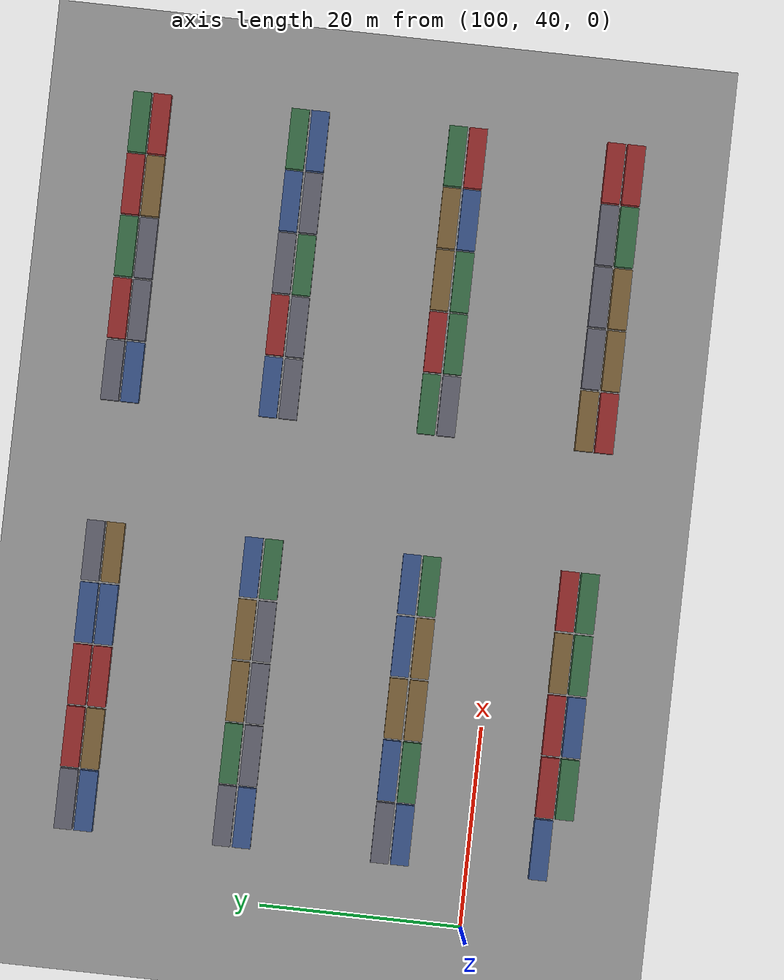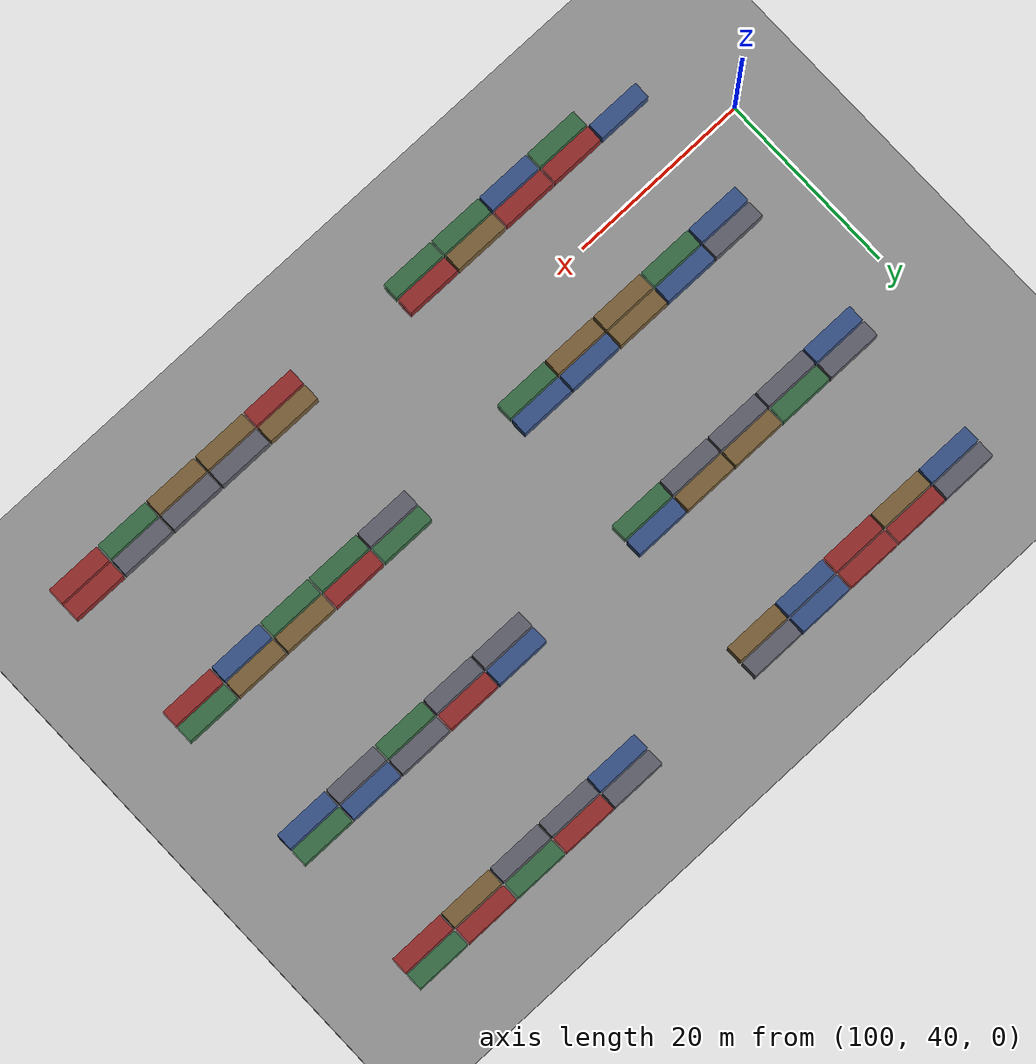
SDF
<sdf version="1.8">
 <world name="port">
  <model name="water">
   <static>true</static>
   <pose>250 250 -0.3 0 0 0</pose>
   <link name="link">
    <visual name="visual">
     <geometry><plane><normal>0 0 1</normal><size>2000 2000</size></plane></geometry>
     <material>
      <ambient>0.05 0.15 0.25 1</ambient>
      <diffuse>0.10 0.25 0.40 1</diffuse>
      <specular>0.20 0.30 0.45 1</specular>
     </material>
    </visual>
   </link>
  </model>
  <model name="port_surface">
   <static>true</static>
   <pose>250.0 250.0 -0.5 0 0 0</pose>
   <link name="link">
    <collision name="collision">
     <geometry><box><size>500.0 500.0 1.0</size></box></geometry>
     <surface><friction><ode><mu>1.0</mu><mu2>1.0</mu2></ode></friction></surface>
    </collision>
    <visual name="visual">
     <geometry><box><size>500.0 500.0 1.0</size></box></geometry>
     <material><ambient>0.45 0.45 0.45 1</ambient><diffuse>0.55 0.55 0.55 1</diffuse></material>
    </visual>
   </link>
  </model>
  <model name="container_02_00_0_1">
   <pose>108.600 32.900 1.050 0 0 0</pose>
   <link name="link">
    <inertial>
     <mass>2300.0</mass>
     <inertia><ixx>1387.67</ixx><ixy>0</ixy><ixz>0</ixz><iyy>7666.67</iyy><iyz>0</iyz><izz>7521.0</izz></inertia>
    </inertial>
    <collision name="collision"><geometry><box><size>6.0 1.8 2.0</size></box></geometry></collision>
    <visual name="visual">
     <geometry><box><size>6.0 1.8 2.0</size></box></geometry>
     <material><ambient>0.2 0.3 0.5 1</ambient><diffuse>0.2 0.3 0.5 1</diffuse></material>
    </visual>
   </link>
  </model>
  <model name="container_02_00_1_0">
   <pose>114.800 30.900 1.050 0 0 0</pose>
   <link name="link">
    <inertial>
     <mass>2300.0</mass>
     <inertia><ixx>1387.67</ixx><ixy>0</ixy><ixz>0</ixz><iyy>7666.67</iyy><iyz>0</iyz><izz>7521.0</izz></inertia>
    </inertial>
    <collision name="collision"><geometry><box><size>6.0 1.8 2.0</size></box></geometry></collision>
    <visual name="visual">
     <geometry><box><size>6.0 1.8 2.0</size></box></geometry>
     <material><ambient>0.2 0.4 0.25 1</ambient><diffuse>0.2 0.4 0.25 1</diffuse></material>
    </visual>
   </link>
  </model>
  <model name="container_02_00_1_1">
   <pose>114.800 32.900 1.050 0 0 0</pose>
   <link name="link">
    <inertial>
     <mass>2300.0</mass>
     <inertia><ixx>1387.67</ixx><ixy>0</ixy><ixz>0</ixz><iyy>7666.67</iyy><iyz>0</iyz><izz>7521.0</izz></inertia>
    </inertial>
    <collision name="collision"><geometry><box><size>6.0 1.8 2.0</size></box></geometry></collision>
    <visual name="visual">
     <geometry><box><size>6.0 1.8 2.0</size></box></geometry>
     <material><ambient>0.55 0.15 0.15 1</ambient><diffuse>0.55 0.15 0.15 1</diffuse></material>
    </visual>
   </link>
  </model>
  <model name="container_02_00_2_0">
   <pose>121.000 30.900 1.050 0 0 0</pose>
   <link name="link">
    <inertial>
     <mass>2300.0</mass>
     <inertia><ixx>1387.67</ixx><ixy>0</ixy><ixz>0</ixz><iyy>7666.67</iyy><iyz>0</iyz><izz>7521.0</izz></inertia>
    </inertial>
    <collision name="collision"><geometry><box><size>6.0 1.8 2.0</size></box></geometry></collision>
    <visual name="visual">
     <geometry><box><size>6.0 1.8 2.0</size></box></geometry>
     <material><ambient>0.2 0.3 0.5 1</ambient><diffuse>0.2 0.3 0.5 1</diffuse></material>
    </visual>
   </link>
  </model>
  <model name="container_02_00_2_1">
   <pose>121.000 32.900 1.050 0 0 0</pose>
   <link name="link">
    <inertial>
     <mass>2300.0</mass>
     <inertia><ixx>1387.67</ixx><ixy>0</ixy><ixz>0</ixz><iyy>7666.67</iyy><iyz>0</iyz><izz>7521.0</izz></inertia>
    </inertial>
    <collision name="collision"><geometry><box><size>6.0 1.8 2.0</size></box></geometry></collision>
    <visual name="visual">
     <geometry><box><size>6.0 1.8 2.0</size></box></geometry>
     <material><ambient>0.55 0.15 0.15 1</ambient><diffuse>0.55 0.15 0.15 1</diffuse></material>
    </visual>
   </link>
  </model>
  <model name="container_02_00_3_0">
   <pose>127.200 30.900 1.050 0 0 0</pose>
   <link name="link">
    <inertial>
     <mass>2300.0</mass>
     <inertia><ixx>1387.67</ixx><ixy>0</ixy><ixz>0</ixz><iyy>7666.67</iyy><iyz>0</iyz><izz>7521.0</izz></inertia>
    </inertial>
    <collision name="collision"><geometry><box><size>6.0 1.8 2.0</size></box></geometry></collision>
    <visual name="visual">
     <geometry><box><size>6.0 1.8 2.0</size></box></geometry>
     <material><ambient>0.2 0.4 0.25 1</ambient><diffuse>0.2 0.4 0.25 1</diffuse></material>
    </visual>
   </link>
  </model>
  <model name="container_02_00_3_1">
   <pose>127.200 32.900 1.050 0 0 0</pose>
   <link name="link">
    <inertial>
     <mass>2300.0</mass>
     <inertia><ixx>1387.67</ixx><ixy>0</ixy><ixz>0</ixz><iyy>7666.67</iyy><iyz>0</iyz><izz>7521.0</izz></inertia>
    </inertial>
    <collision name="collision"><geometry><box><size>6.0 1.8 2.0</size></box></geometry></collision>
    <visual name="visual">
     <geometry><box><size>6.0 1.8 2.0</size></box></geometry>
     <material><ambient>0.45 0.35 0.2 1</ambient><diffuse>0.45 0.35 0.2 1</diffuse></material>
    </visual>
   </link>
  </model>
  <model name="container_02_00_4_0">
   <pose>133.400 30.900 1.050 0 0 0</pose>
   <link name="link">
    <inertial>
     <mass>2300.0</mass>
     <inertia><ixx>1387.67</ixx><ixy>0</ixy><ixz>0</ixz><iyy>7666.67</iyy><iyz>0</iyz><izz>7521.0</izz></inertia>
    </inertial>
    <collision name="collision"><geometry><box><size>6.0 1.8 2.0</size></box></geometry></collision>
    <visual name="visual">
     <geometry><box><size>6.0 1.8 2.0</size></box></geometry>
     <material><ambient>0.2 0.4 0.25 1</ambient><diffuse>0.2 0.4 0.25 1</diffuse></material>
    </visual>
   </link>
  </model>
  <model name="container_02_00_4_1">
   <pose>133.400 32.900 1.050 0 0 0</pose>
   <link name="link">
    <inertial>
     <mass>2300.0</mass>
     <inertia><ixx>1387.67</ixx><ixy>0</ixy><ixz>0</ixz><iyy>7666.67</iyy><iyz>0</iyz><izz>7521.0</izz></inertia>
    </inertial>
    <collision name="collision"><geometry><box><size>6.0 1.8 2.0</size></box></geometry></collision>
    <visual name="visual">
     <geometry><box><size>6.0 1.8 2.0</size></box></geometry>
     <material><ambient>0.55 0.15 0.15 1</ambient><diffuse>0.55 0.15 0.15 1</diffuse></material>
    </visual>
   </link>
  </model>
  <model name="container_02_01_0_0">
   <pose>108.600 46.700 1.050 0 0 0</pose>
   <link name="link">
    <inertial>
     <mass>2300.0</mass>
     <inertia><ixx>1387.67</ixx><ixy>0</ixy><ixz>0</ixz><iyy>7666.67</iyy><iyz>0</iyz><izz>7521.0</izz></inertia>
    </inertial>
    <collision name="collision"><geometry><box><size>6.0 1.8 2.0</size></box></geometry></collision>
    <visual name="visual">
     <geometry><box><size>6.0 1.8 2.0</size></box></geometry>
     <material><ambient>0.2 0.3 0.5 1</ambient><diffuse>0.2 0.3 0.5 1</diffuse></material>
    </visual>
   </link>
  </model>
  <model name="container_02_01_0_1">
   <pose>108.600 48.700 1.050 0 0 0</pose>
   <link name="link">
    <inertial>
     <mass>2300.0</mass>
     <inertia><ixx>1387.67</ixx><ixy>0</ixy><ixz>0</ixz><iyy>7666.67</iyy><iyz>0</iyz><izz>7521.0</izz></inertia>
    </inertial>
    <collision name="collision"><geometry><box><size>6.0 1.8 2.0</size></box></geometry></collision>
    <visual name="visual">
     <geometry><box><size>6.0 1.8 2.0</size></box></geometry>
     <material><ambient>0.35 0.35 0.4 1</ambient><diffuse>0.35 0.35 0.4 1</diffuse></material>
    </visual>
   </link>
  </model>
  <model name="container_02_01_1_0">
   <pose>114.800 46.700 1.050 0 0 0</pose>
   <link name="link">
    <inertial>
     <mass>2300.0</mass>
     <inertia><ixx>1387.67</ixx><ixy>0</ixy><ixz>0</ixz><iyy>7666.67</iyy><iyz>0</iyz><izz>7521.0</izz></inertia>
    </inertial>
    <collision name="collision"><geometry><box><size>6.0 1.8 2.0</size></box></geometry></collision>
    <visual name="visual">
     <geometry><box><size>6.0 1.8 2.0</size></box></geometry>
     <material><ambient>0.2 0.4 0.25 1</ambient><diffuse>0.2 0.4 0.25 1</diffuse></material>
    </visual>
   </link>
  </model>
  <model name="container_02_01_1_1">
   <pose>114.800 48.700 1.050 0 0 0</pose>
   <link name="link">
    <inertial>
     <mass>2300.0</mass>
     <inertia><ixx>1387.67</ixx><ixy>0</ixy><ixz>0</ixz><iyy>7666.67</iyy><iyz>0</iyz><izz>7521.0</izz></inertia>
    </inertial>
    <collision name="collision"><geometry><box><size>6.0 1.8 2.0</size></box></geometry></collision>
    <visual name="visual">
     <geometry><box><size>6.0 1.8 2.0</size></box></geometry>
     <material><ambient>0.2 0.3 0.5 1</ambient><diffuse>0.2 0.3 0.5 1</diffuse></material>
    </visual>
   </link>
  </model>
  <model name="container_02_01_2_0">
   <pose>121.000 46.700 1.050 0 0 0</pose>
   <link name="link">
    <inertial>
     <mass>2300.0</mass>
     <inertia><ixx>1387.67</ixx><ixy>0</ixy><ixz>0</ixz><iyy>7666.67</iyy><iyz>0</iyz><izz>7521.0</izz></inertia>
    </inertial>
    <collision name="collision"><geometry><box><size>6.0 1.8 2.0</size></box></geometry></collision>
    <visual name="visual">
     <geometry><box><size>6.0 1.8 2.0</size></box></geometry>
     <material><ambient>0.45 0.35 0.2 1</ambient><diffuse>0.45 0.35 0.2 1</diffuse></material>
    </visual>
   </link>
  </model>
  <model name="container_02_01_2_1">
   <pose>121.000 48.700 1.050 0 0 0</pose>
   <link name="link">
    <inertial>
     <mass>2300.0</mass>
     <inertia><ixx>1387.67</ixx><ixy>0</ixy><ixz>0</ixz><iyy>7666.67</iyy><iyz>0</iyz><izz>7521.0</izz></inertia>
    </inertial>
    <collision name="collision"><geometry><box><size>6.0 1.8 2.0</size></box></geometry></collision>
    <visual name="visual">
     <geometry><box><size>6.0 1.8 2.0</size></box></geometry>
     <material><ambient>0.45 0.35 0.2 1</ambient><diffuse>0.45 0.35 0.2 1</diffuse></material>
    </visual>
   </link>
  </model>
  <model name="container_02_01_3_0">
   <pose>127.200 46.700 1.050 0 0 0</pose>
   <link name="link">
    <inertial>
     <mass>2300.0</mass>
     <inertia><ixx>1387.67</ixx><ixy>0</ixy><ixz>0</ixz><iyy>7666.67</iyy><iyz>0</iyz><izz>7521.0</izz></inertia>
    </inertial>
    <collision name="collision"><geometry><box><size>6.0 1.8 2.0</size></box></geometry></collision>
    <visual name="visual">
     <geometry><box><size>6.0 1.8 2.0</size></box></geometry>
     <material><ambient>0.45 0.35 0.2 1</ambient><diffuse>0.45 0.35 0.2 1</diffuse></material>
    </visual>
   </link>
  </model>
  <model name="container_02_01_3_1">
   <pose>127.200 48.700 1.050 0 0 0</pose>
   <link name="link">
    <inertial>
     <mass>2300.0</mass>
     <inertia><ixx>1387.67</ixx><ixy>0</ixy><ixz>0</ixz><iyy>7666.67</iyy><iyz>0</iyz><izz>7521.0</izz></inertia>
    </inertial>
    <collision name="collision"><geometry><box><size>6.0 1.8 2.0</size></box></geometry></collision>
    <visual name="visual">
     <geometry><box><size>6.0 1.8 2.0</size></box></geometry>
     <material><ambient>0.2 0.3 0.5 1</ambient><diffuse>0.2 0.3 0.5 1</diffuse></material>
    </visual>
   </link>
  </model>
  <model name="container_02_01_4_0">
   <pose>133.400 46.700 1.050 0 0 0</pose>
   <link name="link">
    <inertial>
     <mass>2300.0</mass>
     <inertia><ixx>1387.67</ixx><ixy>0</ixy><ixz>0</ixz><iyy>7666.67</iyy><iyz>0</iyz><izz>7521.0</izz></inertia>
    </inertial>
    <collision name="collision"><geometry><box><size>6.0 1.8 2.0</size></box></geometry></collision>
    <visual name="visual">
     <geometry><box><size>6.0 1.8 2.0</size></box></geometry>
     <material><ambient>0.2 0.4 0.25 1</ambient><diffuse>0.2 0.4 0.25 1</diffuse></material>
    </visual>
   </link>
  </model>
  <model name="container_02_01_4_1">
   <pose>133.400 48.700 1.050 0 0 0</pose>
   <link name="link">
    <inertial>
     <mass>2300.0</mass>
     <inertia><ixx>1387.67</ixx><ixy>0</ixy><ixz>0</ixz><iyy>7666.67</iyy><iyz>0</iyz><izz>7521.0</izz></inertia>
    </inertial>
    <collision name="collision"><geometry><box><size>6.0 1.8 2.0</size></box></geometry></collision>
    <visual name="visual">
     <geometry><box><size>6.0 1.8 2.0</size></box></geometry>
     <material><ambient>0.2 0.3 0.5 1</ambient><diffuse>0.2 0.3 0.5 1</diffuse></material>
    </visual>
   </link>
  </model>
  <model name="container_02_02_0_0">
   <pose>108.600 62.500 1.050 0 0 0</pose>
   <link name="link">
    <inertial>
     <mass>2300.0</mass>
     <inertia><ixx>1387.67</ixx><ixy>0</ixy><ixz>0</ixz><iyy>7666.67</iyy><iyz>0</iyz><izz>7521.0</izz></inertia>
    </inertial>
    <collision name="collision"><geometry><box><size>6.0 1.8 2.0</size></box></geometry></collision>
    <visual name="visual">
     <geometry><box><size>6.0 1.8 2.0</size></box></geometry>
     <material><ambient>0.2 0.3 0.5 1</ambient><diffuse>0.2 0.3 0.5 1</diffuse></material>
    </visual>
   </link>
  </model>
  <model name="container_02_02_0_1">
   <pose>108.600 64.500 1.050 0 0 0</pose>
   <link name="link">
    <inertial>
     <mass>2300.0</mass>
     <inertia><ixx>1387.67</ixx><ixy>0</ixy><ixz>0</ixz><iyy>7666.67</iyy><iyz>0</iyz><izz>7521.0</izz></inertia>
    </inertial>
    <collision name="collision"><geometry><box><size>6.0 1.8 2.0</size></box></geometry></collision>
    <visual name="visual">
     <geometry><box><size>6.0 1.8 2.0</size></box></geometry>
     <material><ambient>0.35 0.35 0.4 1</ambient><diffuse>0.35 0.35 0.4 1</diffuse></material>
    </visual>
   </link>
  </model>
  <model name="container_02_02_1_0">
   <pose>114.800 62.500 1.050 0 0 0</pose>
   <link name="link">
    <inertial>
     <mass>2300.0</mass>
     <inertia><ixx>1387.67</ixx><ixy>0</ixy><ixz>0</ixz><iyy>7666.67</iyy><iyz>0</iyz><izz>7521.0</izz></inertia>
    </inertial>
    <collision name="collision"><geometry><box><size>6.0 1.8 2.0</size></box></geometry></collision>
    <visual name="visual">
     <geometry><box><size>6.0 1.8 2.0</size></box></geometry>
     <material><ambient>0.35 0.35 0.4 1</ambient><diffuse>0.35 0.35 0.4 1</diffuse></material>
    </visual>
   </link>
  </model>
  <model name="container_02_02_1_1">
   <pose>114.800 64.500 1.050 0 0 0</pose>
   <link name="link">
    <inertial>
     <mass>2300.0</mass>
     <inertia><ixx>1387.67</ixx><ixy>0</ixy><ixz>0</ixz><iyy>7666.67</iyy><iyz>0</iyz><izz>7521.0</izz></inertia>
    </inertial>
    <collision name="collision"><geometry><box><size>6.0 1.8 2.0</size></box></geometry></collision>
    <visual name="visual">
     <geometry><box><size>6.0 1.8 2.0</size></box></geometry>
     <material><ambient>0.2 0.4 0.25 1</ambient><diffuse>0.2 0.4 0.25 1</diffuse></material>
    </visual>
   </link>
  </model>
  <model name="container_02_02_2_0">
   <pose>121.000 62.500 1.050 0 0 0</pose>
   <link name="link">
    <inertial>
     <mass>2300.0</mass>
     <inertia><ixx>1387.67</ixx><ixy>0</ixy><ixz>0</ixz><iyy>7666.67</iyy><iyz>0</iyz><izz>7521.0</izz></inertia>
    </inertial>
    <collision name="collision"><geometry><box><size>6.0 1.8 2.0</size></box></geometry></collision>
    <visual name="visual">
     <geometry><box><size>6.0 1.8 2.0</size></box></geometry>
     <material><ambient>0.35 0.35 0.4 1</ambient><diffuse>0.35 0.35 0.4 1</diffuse></material>
    </visual>
   </link>
  </model>
  <model name="container_02_02_2_1">
   <pose>121.000 64.500 1.050 0 0 0</pose>
   <link name="link">
    <inertial>
     <mass>2300.0</mass>
     <inertia><ixx>1387.67</ixx><ixy>0</ixy><ixz>0</ixz><iyy>7666.67</iyy><iyz>0</iyz><izz>7521.0</izz></inertia>
    </inertial>
    <collision name="collision"><geometry><box><size>6.0 1.8 2.0</size></box></geometry></collision>
    <visual name="visual">
     <geometry><box><size>6.0 1.8 2.0</size></box></geometry>
     <material><ambient>0.45 0.35 0.2 1</ambient><diffuse>0.45 0.35 0.2 1</diffuse></material>
    </visual>
   </link>
  </model>
  <model name="container_02_02_3_0">
   <pose>127.200 62.500 1.050 0 0 0</pose>
   <link name="link">
    <inertial>
     <mass>2300.0</mass>
     <inertia><ixx>1387.67</ixx><ixy>0</ixy><ixz>0</ixz><iyy>7666.67</iyy><iyz>0</iyz><izz>7521.0</izz></inertia>
    </inertial>
    <collision name="collision"><geometry><box><size>6.0 1.8 2.0</size></box></geometry></collision>
    <visual name="visual">
     <geometry><box><size>6.0 1.8 2.0</size></box></geometry>
     <material><ambient>0.35 0.35 0.4 1</ambient><diffuse>0.35 0.35 0.4 1</diffuse></material>
    </visual>
   </link>
  </model>
  <model name="container_02_02_3_1">
   <pose>127.200 64.500 1.050 0 0 0</pose>
   <link name="link">
    <inertial>
     <mass>2300.0</mass>
     <inertia><ixx>1387.67</ixx><ixy>0</ixy><ixz>0</ixz><iyy>7666.67</iyy><iyz>0</iyz><izz>7521.0</izz></inertia>
    </inertial>
    <collision name="collision"><geometry><box><size>6.0 1.8 2.0</size></box></geometry></collision>
    <visual name="visual">
     <geometry><box><size>6.0 1.8 2.0</size></box></geometry>
     <material><ambient>0.45 0.35 0.2 1</ambient><diffuse>0.45 0.35 0.2 1</diffuse></material>
    </visual>
   </link>
  </model>
  <model name="container_02_02_4_0">
   <pose>133.400 62.500 1.050 0 0 0</pose>
   <link name="link">
    <inertial>
     <mass>2300.0</mass>
     <inertia><ixx>1387.67</ixx><ixy>0</ixy><ixz>0</ixz><iyy>7666.67</iyy><iyz>0</iyz><izz>7521.0</izz></inertia>
    </inertial>
    <collision name="collision"><geometry><box><size>6.0 1.8 2.0</size></box></geometry></collision>
    <visual name="visual">
     <geometry><box><size>6.0 1.8 2.0</size></box></geometry>
     <material><ambient>0.2 0.4 0.25 1</ambient><diffuse>0.2 0.4 0.25 1</diffuse></material>
    </visual>
   </link>
  </model>
  <model name="container_02_02_4_1">
   <pose>133.400 64.500 1.050 0 0 0</pose>
   <link name="link">
    <inertial>
     <mass>2300.0</mass>
     <inertia><ixx>1387.67</ixx><ixy>0</ixy><ixz>0</ixz><iyy>7666.67</iyy><iyz>0</iyz><izz>7521.0</izz></inertia>
    </inertial>
    <collision name="collision"><geometry><box><size>6.0 1.8 2.0</size></box></geometry></collision>
    <visual name="visual">
     <geometry><box><size>6.0 1.8 2.0</size></box></geometry>
     <material><ambient>0.2 0.3 0.5 1</ambient><diffuse>0.2 0.3 0.5 1</diffuse></material>
    </visual>
   </link>
  </model>
  <model name="container_02_03_0_0">
   <pose>108.600 78.300 1.050 0 0 0</pose>
   <link name="link">
    <inertial>
     <mass>2300.0</mass>
     <inertia><ixx>1387.67</ixx><ixy>0</ixy><ixz>0</ixz><iyy>7666.67</iyy><iyz>0</iyz><izz>7521.0</izz></inertia>
    </inertial>
    <collision name="collision"><geometry><box><size>6.0 1.8 2.0</size></box></geometry></collision>
    <visual name="visual">
     <geometry><box><size>6.0 1.8 2.0</size></box></geometry>
     <material><ambient>0.2 0.3 0.5 1</ambient><diffuse>0.2 0.3 0.5 1</diffuse></material>
    </visual>
   </link>
  </model>
  <model name="container_02_03_0_1">
   <pose>108.600 80.300 1.050 0 0 0</pose>
   <link name="link">
    <inertial>
     <mass>2300.0</mass>
     <inertia><ixx>1387.67</ixx><ixy>0</ixy><ixz>0</ixz><iyy>7666.67</iyy><iyz>0</iyz><izz>7521.0</izz></inertia>
    </inertial>
    <collision name="collision"><geometry><box><size>6.0 1.8 2.0</size></box></geometry></collision>
    <visual name="visual">
     <geometry><box><size>6.0 1.8 2.0</size></box></geometry>
     <material><ambient>0.35 0.35 0.4 1</ambient><diffuse>0.35 0.35 0.4 1</diffuse></material>
    </visual>
   </link>
  </model>
  <model name="container_02_03_1_0">
   <pose>114.800 78.300 1.050 0 0 0</pose>
   <link name="link">
    <inertial>
     <mass>2300.0</mass>
     <inertia><ixx>1387.67</ixx><ixy>0</ixy><ixz>0</ixz><iyy>7666.67</iyy><iyz>0</iyz><izz>7521.0</izz></inertia>
    </inertial>
    <collision name="collision"><geometry><box><size>6.0 1.8 2.0</size></box></geometry></collision>
    <visual name="visual">
     <geometry><box><size>6.0 1.8 2.0</size></box></geometry>
     <material><ambient>0.45 0.35 0.2 1</ambient><diffuse>0.45 0.35 0.2 1</diffuse></material>
    </visual>
   </link>
  </model>
  <model name="container_02_03_1_1">
   <pose>114.800 80.300 1.050 0 0 0</pose>
   <link name="link">
    <inertial>
     <mass>2300.0</mass>
     <inertia><ixx>1387.67</ixx><ixy>0</ixy><ixz>0</ixz><iyy>7666.67</iyy><iyz>0</iyz><izz>7521.0</izz></inertia>
    </inertial>
    <collision name="collision"><geometry><box><size>6.0 1.8 2.0</size></box></geometry></collision>
    <visual name="visual">
     <geometry><box><size>6.0 1.8 2.0</size></box></geometry>
     <material><ambient>0.55 0.15 0.15 1</ambient><diffuse>0.55 0.15 0.15 1</diffuse></material>
    </visual>
   </link>
  </model>
  <model name="container_02_03_2_0">
   <pose>121.000 78.300 1.050 0 0 0</pose>
   <link name="link">
    <inertial>
     <mass>2300.0</mass>
     <inertia><ixx>1387.67</ixx><ixy>0</ixy><ixz>0</ixz><iyy>7666.67</iyy><iyz>0</iyz><izz>7521.0</izz></inertia>
    </inertial>
    <collision name="collision"><geometry><box><size>6.0 1.8 2.0</size></box></geometry></collision>
    <visual name="visual">
     <geometry><box><size>6.0 1.8 2.0</size></box></geometry>
     <material><ambient>0.55 0.15 0.15 1</ambient><diffuse>0.55 0.15 0.15 1</diffuse></material>
    </visual>
   </link>
  </model>
  <model name="container_02_03_2_1">
   <pose>121.000 80.300 1.050 0 0 0</pose>
   <link name="link">
    <inertial>
     <mass>2300.0</mass>
     <inertia><ixx>1387.67</ixx><ixy>0</ixy><ixz>0</ixz><iyy>7666.67</iyy><iyz>0</iyz><izz>7521.0</izz></inertia>
    </inertial>
    <collision name="collision"><geometry><box><size>6.0 1.8 2.0</size></box></geometry></collision>
    <visual name="visual">
     <geometry><box><size>6.0 1.8 2.0</size></box></geometry>
     <material><ambient>0.55 0.15 0.15 1</ambient><diffuse>0.55 0.15 0.15 1</diffuse></material>
    </visual>
   </link>
  </model>
  <model name="container_02_03_3_0">
   <pose>127.200 78.300 1.050 0 0 0</pose>
   <link name="link">
    <inertial>
     <mass>2300.0</mass>
     <inertia><ixx>1387.67</ixx><ixy>0</ixy><ixz>0</ixz><iyy>7666.67</iyy><iyz>0</iyz><izz>7521.0</izz></inertia>
    </inertial>
    <collision name="collision"><geometry><box><size>6.0 1.8 2.0</size></box></geometry></collision>
    <visual name="visual">
     <geometry><box><size>6.0 1.8 2.0</size></box></geometry>
     <material><ambient>0.2 0.3 0.5 1</ambient><diffuse>0.2 0.3 0.5 1</diffuse></material>
    </visual>
   </link>
  </model>
  <model name="container_02_03_3_1">
   <pose>127.200 80.300 1.050 0 0 0</pose>
   <link name="link">
    <inertial>
     <mass>2300.0</mass>
     <inertia><ixx>1387.67</ixx><ixy>0</ixy><ixz>0</ixz><iyy>7666.67</iyy><iyz>0</iyz><izz>7521.0</izz></inertia>
    </inertial>
    <collision name="collision"><geometry><box><size>6.0 1.8 2.0</size></box></geometry></collision>
    <visual name="visual">
     <geometry><box><size>6.0 1.8 2.0</size></box></geometry>
     <material><ambient>0.2 0.3 0.5 1</ambient><diffuse>0.2 0.3 0.5 1</diffuse></material>
    </visual>
   </link>
  </model>
  <model name="container_02_03_4_0">
   <pose>133.400 78.300 1.050 0 0 0</pose>
   <link name="link">
    <inertial>
     <mass>2300.0</mass>
     <inertia><ixx>1387.67</ixx><ixy>0</ixy><ixz>0</ixz><iyy>7666.67</iyy><iyz>0</iyz><izz>7521.0</izz></inertia>
    </inertial>
    <collision name="collision"><geometry><box><size>6.0 1.8 2.0</size></box></geometry></collision>
    <visual name="visual">
     <geometry><box><size>6.0 1.8 2.0</size></box></geometry>
     <material><ambient>0.45 0.35 0.2 1</ambient><diffuse>0.45 0.35 0.2 1</diffuse></material>
    </visual>
   </link>
  </model>
  <model name="container_02_03_4_1">
   <pose>133.400 80.300 1.050 0 0 0</pose>
   <link name="link">
    <inertial>
     <mass>2300.0</mass>
     <inertia><ixx>1387.67</ixx><ixy>0</ixy><ixz>0</ixz><iyy>7666.67</iyy><iyz>0</iyz><izz>7521.0</izz></inertia>
    </inertial>
    <collision name="collision"><geometry><box><size>6.0 1.8 2.0</size></box></geometry></collision>
    <visual name="visual">
     <geometry><box><size>6.0 1.8 2.0</size></box></geometry>
     <material><ambient>0.35 0.35 0.4 1</ambient><diffuse>0.35 0.35 0.4 1</diffuse></material>
    </visual>
   </link>
  </model>
  <model name="container_03_00_0_0">
   <pose>151.400 30.900 1.050 0 0 0</pose>
   <link name="link">
    <inertial>
     <mass>2300.0</mass>
     <inertia><ixx>1387.67</ixx><ixy>0</ixy><ixz>0</ixz><iyy>7666.67</iyy><iyz>0</iyz><izz>7521.0</izz></inertia>
    </inertial>
    <collision name="collision"><geometry><box><size>6.0 1.8 2.0</size></box></geometry></collision>
    <visual name="visual">
     <geometry><box><size>6.0 1.8 2.0</size></box></geometry>
     <material><ambient>0.55 0.15 0.15 1</ambient><diffuse>0.55 0.15 0.15 1</diffuse></material>
    </visual>
   </link>
  </model>
  <model name="container_03_00_0_1">
   <pose>151.400 32.900 1.050 0 0 0</pose>
   <link name="link">
    <inertial>
     <mass>2300.0</mass>
     <inertia><ixx>1387.67</ixx><ixy>0</ixy><ixz>0</ixz><iyy>7666.67</iyy><iyz>0</iyz><izz>7521.0</izz></inertia>
    </inertial>
    <collision name="collision"><geometry><box><size>6.0 1.8 2.0</size></box></geometry></collision>
    <visual name="visual">
     <geometry><box><size>6.0 1.8 2.0</size></box></geometry>
     <material><ambient>0.45 0.35 0.2 1</ambient><diffuse>0.45 0.35 0.2 1</diffuse></material>
    </visual>
   </link>
  </model>
  <model name="container_03_00_1_0">
   <pose>157.600 30.900 1.050 0 0 0</pose>
   <link name="link">
    <inertial>
     <mass>2300.0</mass>
     <inertia><ixx>1387.67</ixx><ixy>0</ixy><ixz>0</ixz><iyy>7666.67</iyy><iyz>0</iyz><izz>7521.0</izz></inertia>
    </inertial>
    <collision name="collision"><geometry><box><size>6.0 1.8 2.0</size></box></geometry></collision>
    <visual name="visual">
     <geometry><box><size>6.0 1.8 2.0</size></box></geometry>
     <material><ambient>0.45 0.35 0.2 1</ambient><diffuse>0.45 0.35 0.2 1</diffuse></material>
    </visual>
   </link>
  </model>
  <model name="container_03_00_1_1">
   <pose>157.600 32.900 1.050 0 0 0</pose>
   <link name="link">
    <inertial>
     <mass>2300.0</mass>
     <inertia><ixx>1387.67</ixx><ixy>0</ixy><ixz>0</ixz><iyy>7666.67</iyy><iyz>0</iyz><izz>7521.0</izz></inertia>
    </inertial>
    <collision name="collision"><geometry><box><size>6.0 1.8 2.0</size></box></geometry></collision>
    <visual name="visual">
     <geometry><box><size>6.0 1.8 2.0</size></box></geometry>
     <material><ambient>0.35 0.35 0.4 1</ambient><diffuse>0.35 0.35 0.4 1</diffuse></material>
    </visual>
   </link>
  </model>
  <model name="container_03_00_2_0">
   <pose>163.800 30.900 1.050 0 0 0</pose>
   <link name="link">
    <inertial>
     <mass>2300.0</mass>
     <inertia><ixx>1387.67</ixx><ixy>0</ixy><ixz>0</ixz><iyy>7666.67</iyy><iyz>0</iyz><izz>7521.0</izz></inertia>
    </inertial>
    <collision name="collision"><geometry><box><size>6.0 1.8 2.0</size></box></geometry></collision>
    <visual name="visual">
     <geometry><box><size>6.0 1.8 2.0</size></box></geometry>
     <material><ambient>0.45 0.35 0.2 1</ambient><diffuse>0.45 0.35 0.2 1</diffuse></material>
    </visual>
   </link>
  </model>
  <model name="container_03_00_2_1">
   <pose>163.800 32.900 1.050 0 0 0</pose>
   <link name="link">
    <inertial>
     <mass>2300.0</mass>
     <inertia><ixx>1387.67</ixx><ixy>0</ixy><ixz>0</ixz><iyy>7666.67</iyy><iyz>0</iyz><izz>7521.0</izz></inertia>
    </inertial>
    <collision name="collision"><geometry><box><size>6.0 1.8 2.0</size></box></geometry></collision>
    <visual name="visual">
     <geometry><box><size>6.0 1.8 2.0</size></box></geometry>
     <material><ambient>0.35 0.35 0.4 1</ambient><diffuse>0.35 0.35 0.4 1</diffuse></material>
    </visual>
   </link>
  </model>
  <model name="container_03_00_3_0">
   <pose>170.000 30.900 1.050 0 0 0</pose>
   <link name="link">
    <inertial>
     <mass>2300.0</mass>
     <inertia><ixx>1387.67</ixx><ixy>0</ixy><ixz>0</ixz><iyy>7666.67</iyy><iyz>0</iyz><izz>7521.0</izz></inertia>
    </inertial>
    <collision name="collision"><geometry><box><size>6.0 1.8 2.0</size></box></geometry></collision>
    <visual name="visual">
     <geometry><box><size>6.0 1.8 2.0</size></box></geometry>
     <material><ambient>0.2 0.4 0.25 1</ambient><diffuse>0.2 0.4 0.25 1</diffuse></material>
    </visual>
   </link>
  </model>
  <model name="container_03_00_3_1">
   <pose>170.000 32.900 1.050 0 0 0</pose>
   <link name="link">
    <inertial>
     <mass>2300.0</mass>
     <inertia><ixx>1387.67</ixx><ixy>0</ixy><ixz>0</ixz><iyy>7666.67</iyy><iyz>0</iyz><izz>7521.0</izz></inertia>
    </inertial>
    <collision name="collision"><geometry><box><size>6.0 1.8 2.0</size></box></geometry></collision>
    <visual name="visual">
     <geometry><box><size>6.0 1.8 2.0</size></box></geometry>
     <material><ambient>0.35 0.35 0.4 1</ambient><diffuse>0.35 0.35 0.4 1</diffuse></material>
    </visual>
   </link>
  </model>
  <model name="container_03_00_4_0">
   <pose>176.200 30.900 1.050 0 0 0</pose>
   <link name="link">
    <inertial>
     <mass>2300.0</mass>
     <inertia><ixx>1387.67</ixx><ixy>0</ixy><ixz>0</ixz><iyy>7666.67</iyy><iyz>0</iyz><izz>7521.0</izz></inertia>
    </inertial>
    <collision name="collision"><geometry><box><size>6.0 1.8 2.0</size></box></geometry></collision>
    <visual name="visual">
     <geometry><box><size>6.0 1.8 2.0</size></box></geometry>
     <material><ambient>0.55 0.15 0.15 1</ambient><diffuse>0.55 0.15 0.15 1</diffuse></material>
    </visual>
   </link>
  </model>
  <model name="container_03_00_4_1">
   <pose>176.200 32.900 1.050 0 0 0</pose>
   <link name="link">
    <inertial>
     <mass>2300.0</mass>
     <inertia><ixx>1387.67</ixx><ixy>0</ixy><ixz>0</ixz><iyy>7666.67</iyy><iyz>0</iyz><izz>7521.0</izz></inertia>
    </inertial>
    <collision name="collision"><geometry><box><size>6.0 1.8 2.0</size></box></geometry></collision>
    <visual name="visual">
     <geometry><box><size>6.0 1.8 2.0</size></box></geometry>
     <material><ambient>0.55 0.15 0.15 1</ambient><diffuse>0.55 0.15 0.15 1</diffuse></material>
    </visual>
   </link>
  </model>
  <model name="container_03_01_0_0">
   <pose>151.400 46.700 1.050 0 0 0</pose>
   <link name="link">
    <inertial>
     <mass>2300.0</mass>
     <inertia><ixx>1387.67</ixx><ixy>0</ixy><ixz>0</ixz><iyy>7666.67</iyy><iyz>0</iyz><izz>7521.0</izz></inertia>
    </inertial>
    <collision name="collision"><geometry><box><size>6.0 1.8 2.0</size></box></geometry></collision>
    <visual name="visual">
     <geometry><box><size>6.0 1.8 2.0</size></box></geometry>
     <material><ambient>0.35 0.35 0.4 1</ambient><diffuse>0.35 0.35 0.4 1</diffuse></material>
    </visual>
   </link>
  </model>
  <model name="container_03_01_0_1">
   <pose>151.400 48.700 1.050 0 0 0</pose>
   <link name="link">
    <inertial>
     <mass>2300.0</mass>
     <inertia><ixx>1387.67</ixx><ixy>0</ixy><ixz>0</ixz><iyy>7666.67</iyy><iyz>0</iyz><izz>7521.0</izz></inertia>
    </inertial>
    <collision name="collision"><geometry><box><size>6.0 1.8 2.0</size></box></geometry></collision>
    <visual name="visual">
     <geometry><box><size>6.0 1.8 2.0</size></box></geometry>
     <material><ambient>0.2 0.4 0.25 1</ambient><diffuse>0.2 0.4 0.25 1</diffuse></material>
    </visual>
   </link>
  </model>
  <model name="container_03_01_1_0">
   <pose>157.600 46.700 1.050 0 0 0</pose>
   <link name="link">
    <inertial>
     <mass>2300.0</mass>
     <inertia><ixx>1387.67</ixx><ixy>0</ixy><ixz>0</ixz><iyy>7666.67</iyy><iyz>0</iyz><izz>7521.0</izz></inertia>
    </inertial>
    <collision name="collision"><geometry><box><size>6.0 1.8 2.0</size></box></geometry></collision>
    <visual name="visual">
     <geometry><box><size>6.0 1.8 2.0</size></box></geometry>
     <material><ambient>0.2 0.4 0.25 1</ambient><diffuse>0.2 0.4 0.25 1</diffuse></material>
    </visual>
   </link>
  </model>
  <model name="container_03_01_1_1">
   <pose>157.600 48.700 1.050 0 0 0</pose>
   <link name="link">
    <inertial>
     <mass>2300.0</mass>
     <inertia><ixx>1387.67</ixx><ixy>0</ixy><ixz>0</ixz><iyy>7666.67</iyy><iyz>0</iyz><izz>7521.0</izz></inertia>
    </inertial>
    <collision name="collision"><geometry><box><size>6.0 1.8 2.0</size></box></geometry></collision>
    <visual name="visual">
     <geometry><box><size>6.0 1.8 2.0</size></box></geometry>
     <material><ambient>0.55 0.15 0.15 1</ambient><diffuse>0.55 0.15 0.15 1</diffuse></material>
    </visual>
   </link>
  </model>
  <model name="container_03_01_2_0">
   <pose>163.800 46.700 1.050 0 0 0</pose>
   <link name="link">
    <inertial>
     <mass>2300.0</mass>
     <inertia><ixx>1387.67</ixx><ixy>0</ixy><ixz>0</ixz><iyy>7666.67</iyy><iyz>0</iyz><izz>7521.0</izz></inertia>
    </inertial>
    <collision name="collision"><geometry><box><size>6.0 1.8 2.0</size></box></geometry></collision>
    <visual name="visual">
     <geometry><box><size>6.0 1.8 2.0</size></box></geometry>
     <material><ambient>0.2 0.4 0.25 1</ambient><diffuse>0.2 0.4 0.25 1</diffuse></material>
    </visual>
   </link>
  </model>
  <model name="container_03_01_2_1">
   <pose>163.800 48.700 1.050 0 0 0</pose>
   <link name="link">
    <inertial>
     <mass>2300.0</mass>
     <inertia><ixx>1387.67</ixx><ixy>0</ixy><ixz>0</ixz><iyy>7666.67</iyy><iyz>0</iyz><izz>7521.0</izz></inertia>
    </inertial>
    <collision name="collision"><geometry><box><size>6.0 1.8 2.0</size></box></geometry></collision>
    <visual name="visual">
     <geometry><box><size>6.0 1.8 2.0</size></box></geometry>
     <material><ambient>0.45 0.35 0.2 1</ambient><diffuse>0.45 0.35 0.2 1</diffuse></material>
    </visual>
   </link>
  </model>
  <model name="container_03_01_3_0">
   <pose>170.000 46.700 1.050 0 0 0</pose>
   <link name="link">
    <inertial>
     <mass>2300.0</mass>
     <inertia><ixx>1387.67</ixx><ixy>0</ixy><ixz>0</ixz><iyy>7666.67</iyy><iyz>0</iyz><izz>7521.0</izz></inertia>
    </inertial>
    <collision name="collision"><geometry><box><size>6.0 1.8 2.0</size></box></geometry></collision>
    <visual name="visual">
     <geometry><box><size>6.0 1.8 2.0</size></box></geometry>
     <material><ambient>0.2 0.3 0.5 1</ambient><diffuse>0.2 0.3 0.5 1</diffuse></material>
    </visual>
   </link>
  </model>
  <model name="container_03_01_3_1">
   <pose>170.000 48.700 1.050 0 0 0</pose>
   <link name="link">
    <inertial>
     <mass>2300.0</mass>
     <inertia><ixx>1387.67</ixx><ixy>0</ixy><ixz>0</ixz><iyy>7666.67</iyy><iyz>0</iyz><izz>7521.0</izz></inertia>
    </inertial>
    <collision name="collision"><geometry><box><size>6.0 1.8 2.0</size></box></geometry></collision>
    <visual name="visual">
     <geometry><box><size>6.0 1.8 2.0</size></box></geometry>
     <material><ambient>0.45 0.35 0.2 1</ambient><diffuse>0.45 0.35 0.2 1</diffuse></material>
    </visual>
   </link>
  </model>
  <model name="container_03_01_4_0">
   <pose>176.200 46.700 1.050 0 0 0</pose>
   <link name="link">
    <inertial>
     <mass>2300.0</mass>
     <inertia><ixx>1387.67</ixx><ixy>0</ixy><ixz>0</ixz><iyy>7666.67</iyy><iyz>0</iyz><izz>7521.0</izz></inertia>
    </inertial>
    <collision name="collision"><geometry><box><size>6.0 1.8 2.0</size></box></geometry></collision>
    <visual name="visual">
     <geometry><box><size>6.0 1.8 2.0</size></box></geometry>
     <material><ambient>0.55 0.15 0.15 1</ambient><diffuse>0.55 0.15 0.15 1</diffuse></material>
    </visual>
   </link>
  </model>
  <model name="container_03_01_4_1">
   <pose>176.200 48.700 1.050 0 0 0</pose>
   <link name="link">
    <inertial>
     <mass>2300.0</mass>
     <inertia><ixx>1387.67</ixx><ixy>0</ixy><ixz>0</ixz><iyy>7666.67</iyy><iyz>0</iyz><izz>7521.0</izz></inertia>
    </inertial>
    <collision name="collision"><geometry><box><size>6.0 1.8 2.0</size></box></geometry></collision>
    <visual name="visual">
     <geometry><box><size>6.0 1.8 2.0</size></box></geometry>
     <material><ambient>0.2 0.4 0.25 1</ambient><diffuse>0.2 0.4 0.25 1</diffuse></material>
    </visual>
   </link>
  </model>
  <model name="container_03_02_0_0">
   <pose>151.400 62.500 1.050 0 0 0</pose>
   <link name="link">
    <inertial>
     <mass>2300.0</mass>
     <inertia><ixx>1387.67</ixx><ixy>0</ixy><ixz>0</ixz><iyy>7666.67</iyy><iyz>0</iyz><izz>7521.0</izz></inertia>
    </inertial>
    <collision name="collision"><geometry><box><size>6.0 1.8 2.0</size></box></geometry></collision>
    <visual name="visual">
     <geometry><box><size>6.0 1.8 2.0</size></box></geometry>
     <material><ambient>0.35 0.35 0.4 1</ambient><diffuse>0.35 0.35 0.4 1</diffuse></material>
    </visual>
   </link>
  </model>
  <model name="container_03_02_0_1">
   <pose>151.400 64.500 1.050 0 0 0</pose>
   <link name="link">
    <inertial>
     <mass>2300.0</mass>
     <inertia><ixx>1387.67</ixx><ixy>0</ixy><ixz>0</ixz><iyy>7666.67</iyy><iyz>0</iyz><izz>7521.0</izz></inertia>
    </inertial>
    <collision name="collision"><geometry><box><size>6.0 1.8 2.0</size></box></geometry></collision>
    <visual name="visual">
     <geometry><box><size>6.0 1.8 2.0</size></box></geometry>
     <material><ambient>0.2 0.3 0.5 1</ambient><diffuse>0.2 0.3 0.5 1</diffuse></material>
    </visual>
   </link>
  </model>
  <model name="container_03_02_1_0">
   <pose>157.600 62.500 1.050 0 0 0</pose>
   <link name="link">
    <inertial>
     <mass>2300.0</mass>
     <inertia><ixx>1387.67</ixx><ixy>0</ixy><ixz>0</ixz><iyy>7666.67</iyy><iyz>0</iyz><izz>7521.0</izz></inertia>
    </inertial>
    <collision name="collision"><geometry><box><size>6.0 1.8 2.0</size></box></geometry></collision>
    <visual name="visual">
     <geometry><box><size>6.0 1.8 2.0</size></box></geometry>
     <material><ambient>0.35 0.35 0.4 1</ambient><diffuse>0.35 0.35 0.4 1</diffuse></material>
    </visual>
   </link>
  </model>
  <model name="container_03_02_1_1">
   <pose>157.600 64.500 1.050 0 0 0</pose>
   <link name="link">
    <inertial>
     <mass>2300.0</mass>
     <inertia><ixx>1387.67</ixx><ixy>0</ixy><ixz>0</ixz><iyy>7666.67</iyy><iyz>0</iyz><izz>7521.0</izz></inertia>
    </inertial>
    <collision name="collision"><geometry><box><size>6.0 1.8 2.0</size></box></geometry></collision>
    <visual name="visual">
     <geometry><box><size>6.0 1.8 2.0</size></box></geometry>
     <material><ambient>0.55 0.15 0.15 1</ambient><diffuse>0.55 0.15 0.15 1</diffuse></material>
    </visual>
   </link>
  </model>
  <model name="container_03_02_2_0">
   <pose>163.800 62.500 1.050 0 0 0</pose>
   <link name="link">
    <inertial>
     <mass>2300.0</mass>
     <inertia><ixx>1387.67</ixx><ixy>0</ixy><ixz>0</ixz><iyy>7666.67</iyy><iyz>0</iyz><izz>7521.0</izz></inertia>
    </inertial>
    <collision name="collision"><geometry><box><size>6.0 1.8 2.0</size></box></geometry></collision>
    <visual name="visual">
     <geometry><box><size>6.0 1.8 2.0</size></box></geometry>
     <material><ambient>0.2 0.4 0.25 1</ambient><diffuse>0.2 0.4 0.25 1</diffuse></material>
    </visual>
   </link>
  </model>
  <model name="container_03_02_2_1">
   <pose>163.800 64.500 1.050 0 0 0</pose>
   <link name="link">
    <inertial>
     <mass>2300.0</mass>
     <inertia><ixx>1387.67</ixx><ixy>0</ixy><ixz>0</ixz><iyy>7666.67</iyy><iyz>0</iyz><izz>7521.0</izz></inertia>
    </inertial>
    <collision name="collision"><geometry><box><size>6.0 1.8 2.0</size></box></geometry></collision>
    <visual name="visual">
     <geometry><box><size>6.0 1.8 2.0</size></box></geometry>
     <material><ambient>0.35 0.35 0.4 1</ambient><diffuse>0.35 0.35 0.4 1</diffuse></material>
    </visual>
   </link>
  </model>
  <model name="container_03_02_3_0">
   <pose>170.000 62.500 1.050 0 0 0</pose>
   <link name="link">
    <inertial>
     <mass>2300.0</mass>
     <inertia><ixx>1387.67</ixx><ixy>0</ixy><ixz>0</ixz><iyy>7666.67</iyy><iyz>0</iyz><izz>7521.0</izz></inertia>
    </inertial>
    <collision name="collision"><geometry><box><size>6.0 1.8 2.0</size></box></geometry></collision>
    <visual name="visual">
     <geometry><box><size>6.0 1.8 2.0</size></box></geometry>
     <material><ambient>0.35 0.35 0.4 1</ambient><diffuse>0.35 0.35 0.4 1</diffuse></material>
    </visual>
   </link>
  </model>
  <model name="container_03_02_3_1">
   <pose>170.000 64.500 1.050 0 0 0</pose>
   <link name="link">
    <inertial>
     <mass>2300.0</mass>
     <inertia><ixx>1387.67</ixx><ixy>0</ixy><ixz>0</ixz><iyy>7666.67</iyy><iyz>0</iyz><izz>7521.0</izz></inertia>
    </inertial>
    <collision name="collision"><geometry><box><size>6.0 1.8 2.0</size></box></geometry></collision>
    <visual name="visual">
     <geometry><box><size>6.0 1.8 2.0</size></box></geometry>
     <material><ambient>0.2 0.3 0.5 1</ambient><diffuse>0.2 0.3 0.5 1</diffuse></material>
    </visual>
   </link>
  </model>
  <model name="container_03_02_4_0">
   <pose>176.200 62.500 1.050 0 0 0</pose>
   <link name="link">
    <inertial>
     <mass>2300.0</mass>
     <inertia><ixx>1387.67</ixx><ixy>0</ixy><ixz>0</ixz><iyy>7666.67</iyy><iyz>0</iyz><izz>7521.0</izz></inertia>
    </inertial>
    <collision name="collision"><geometry><box><size>6.0 1.8 2.0</size></box></geometry></collision>
    <visual name="visual">
     <geometry><box><size>6.0 1.8 2.0</size></box></geometry>
     <material><ambient>0.2 0.3 0.5 1</ambient><diffuse>0.2 0.3 0.5 1</diffuse></material>
    </visual>
   </link>
  </model>
  <model name="container_03_02_4_1">
   <pose>176.200 64.500 1.050 0 0 0</pose>
   <link name="link">
    <inertial>
     <mass>2300.0</mass>
     <inertia><ixx>1387.67</ixx><ixy>0</ixy><ixz>0</ixz><iyy>7666.67</iyy><iyz>0</iyz><izz>7521.0</izz></inertia>
    </inertial>
    <collision name="collision"><geometry><box><size>6.0 1.8 2.0</size></box></geometry></collision>
    <visual name="visual">
     <geometry><box><size>6.0 1.8 2.0</size></box></geometry>
     <material><ambient>0.2 0.4 0.25 1</ambient><diffuse>0.2 0.4 0.25 1</diffuse></material>
    </visual>
   </link>
  </model>
  <model name="container_03_03_0_0">
   <pose>151.400 78.300 1.050 0 0 0</pose>
   <link name="link">
    <inertial>
     <mass>2300.0</mass>
     <inertia><ixx>1387.67</ixx><ixy>0</ixy><ixz>0</ixz><iyy>7666.67</iyy><iyz>0</iyz><izz>7521.0</izz></inertia>
    </inertial>
    <collision name="collision"><geometry><box><size>6.0 1.8 2.0</size></box></geometry></collision>
    <visual name="visual">
     <geometry><box><size>6.0 1.8 2.0</size></box></geometry>
     <material><ambient>0.2 0.3 0.5 1</ambient><diffuse>0.2 0.3 0.5 1</diffuse></material>
    </visual>
   </link>
  </model>
  <model name="container_03_03_0_1">
   <pose>151.400 80.300 1.050 0 0 0</pose>
   <link name="link">
    <inertial>
     <mass>2300.0</mass>
     <inertia><ixx>1387.67</ixx><ixy>0</ixy><ixz>0</ixz><iyy>7666.67</iyy><iyz>0</iyz><izz>7521.0</izz></inertia>
    </inertial>
    <collision name="collision"><geometry><box><size>6.0 1.8 2.0</size></box></geometry></collision>
    <visual name="visual">
     <geometry><box><size>6.0 1.8 2.0</size></box></geometry>
     <material><ambient>0.35 0.35 0.4 1</ambient><diffuse>0.35 0.35 0.4 1</diffuse></material>
    </visual>
   </link>
  </model>
  <model name="container_03_03_1_0">
   <pose>157.600 78.300 1.050 0 0 0</pose>
   <link name="link">
    <inertial>
     <mass>2300.0</mass>
     <inertia><ixx>1387.67</ixx><ixy>0</ixy><ixz>0</ixz><iyy>7666.67</iyy><iyz>0</iyz><izz>7521.0</izz></inertia>
    </inertial>
    <collision name="collision"><geometry><box><size>6.0 1.8 2.0</size></box></geometry></collision>
    <visual name="visual">
     <geometry><box><size>6.0 1.8 2.0</size></box></geometry>
     <material><ambient>0.35 0.35 0.4 1</ambient><diffuse>0.35 0.35 0.4 1</diffuse></material>
    </visual>
   </link>
  </model>
  <model name="container_03_03_1_1">
   <pose>157.600 80.300 1.050 0 0 0</pose>
   <link name="link">
    <inertial>
     <mass>2300.0</mass>
     <inertia><ixx>1387.67</ixx><ixy>0</ixy><ixz>0</ixz><iyy>7666.67</iyy><iyz>0</iyz><izz>7521.0</izz></inertia>
    </inertial>
    <collision name="collision"><geometry><box><size>6.0 1.8 2.0</size></box></geometry></collision>
    <visual name="visual">
     <geometry><box><size>6.0 1.8 2.0</size></box></geometry>
     <material><ambient>0.55 0.15 0.15 1</ambient><diffuse>0.55 0.15 0.15 1</diffuse></material>
    </visual>
   </link>
  </model>
  <model name="container_03_03_2_0">
   <pose>163.800 78.300 1.050 0 0 0</pose>
   <link name="link">
    <inertial>
     <mass>2300.0</mass>
     <inertia><ixx>1387.67</ixx><ixy>0</ixy><ixz>0</ixz><iyy>7666.67</iyy><iyz>0</iyz><izz>7521.0</izz></inertia>
    </inertial>
    <collision name="collision"><geometry><box><size>6.0 1.8 2.0</size></box></geometry></collision>
    <visual name="visual">
     <geometry><box><size>6.0 1.8 2.0</size></box></geometry>
     <material><ambient>0.35 0.35 0.4 1</ambient><diffuse>0.35 0.35 0.4 1</diffuse></material>
    </visual>
   </link>
  </model>
  <model name="container_03_03_2_1">
   <pose>163.800 80.300 1.050 0 0 0</pose>
   <link name="link">
    <inertial>
     <mass>2300.0</mass>
     <inertia><ixx>1387.67</ixx><ixy>0</ixy><ixz>0</ixz><iyy>7666.67</iyy><iyz>0</iyz><izz>7521.0</izz></inertia>
    </inertial>
    <collision name="collision"><geometry><box><size>6.0 1.8 2.0</size></box></geometry></collision>
    <visual name="visual">
     <geometry><box><size>6.0 1.8 2.0</size></box></geometry>
     <material><ambient>0.2 0.4 0.25 1</ambient><diffuse>0.2 0.4 0.25 1</diffuse></material>
    </visual>
   </link>
  </model>
  <model name="container_03_03_3_0">
   <pose>170.000 78.300 1.050 0 0 0</pose>
   <link name="link">
    <inertial>
     <mass>2300.0</mass>
     <inertia><ixx>1387.67</ixx><ixy>0</ixy><ixz>0</ixz><iyy>7666.67</iyy><iyz>0</iyz><izz>7521.0</izz></inertia>
    </inertial>
    <collision name="collision"><geometry><box><size>6.0 1.8 2.0</size></box></geometry></collision>
    <visual name="visual">
     <geometry><box><size>6.0 1.8 2.0</size></box></geometry>
     <material><ambient>0.45 0.35 0.2 1</ambient><diffuse>0.45 0.35 0.2 1</diffuse></material>
    </visual>
   </link>
  </model>
  <model name="container_03_03_3_1">
   <pose>170.000 80.300 1.050 0 0 0</pose>
   <link name="link">
    <inertial>
     <mass>2300.0</mass>
     <inertia><ixx>1387.67</ixx><ixy>0</ixy><ixz>0</ixz><iyy>7666.67</iyy><iyz>0</iyz><izz>7521.0</izz></inertia>
    </inertial>
    <collision name="collision"><geometry><box><size>6.0 1.8 2.0</size></box></geometry></collision>
    <visual name="visual">
     <geometry><box><size>6.0 1.8 2.0</size></box></geometry>
     <material><ambient>0.55 0.15 0.15 1</ambient><diffuse>0.55 0.15 0.15 1</diffuse></material>
    </visual>
   </link>
  </model>
  <model name="container_03_03_4_0">
   <pose>176.200 78.300 1.050 0 0 0</pose>
   <link name="link">
    <inertial>
     <mass>2300.0</mass>
     <inertia><ixx>1387.67</ixx><ixy>0</ixy><ixz>0</ixz><iyy>7666.67</iyy><iyz>0</iyz><izz>7521.0</izz></inertia>
    </inertial>
    <collision name="collision"><geometry><box><size>6.0 1.8 2.0</size></box></geometry></collision>
    <visual name="visual">
     <geometry><box><size>6.0 1.8 2.0</size></box></geometry>
     <material><ambient>0.55 0.15 0.15 1</ambient><diffuse>0.55 0.15 0.15 1</diffuse></material>
    </visual>
   </link>
  </model>
  <model name="container_03_03_4_1">
   <pose>176.200 80.300 1.050 0 0 0</pose>
   <link name="link">
    <inertial>
     <mass>2300.0</mass>
     <inertia><ixx>1387.67</ixx><ixy>0</ixy><ixz>0</ixz><iyy>7666.67</iyy><iyz>0</iyz><izz>7521.0</izz></inertia>
    </inertial>
    <collision name="collision"><geometry><box><size>6.0 1.8 2.0</size></box></geometry></collision>
    <visual name="visual">
     <geometry><box><size>6.0 1.8 2.0</size></box></geometry>
     <material><ambient>0.2 0.4 0.25 1</ambient><diffuse>0.2 0.4 0.25 1</diffuse></material>
    </visual>
   </link>
  </model>
 </world>
</sdf>
